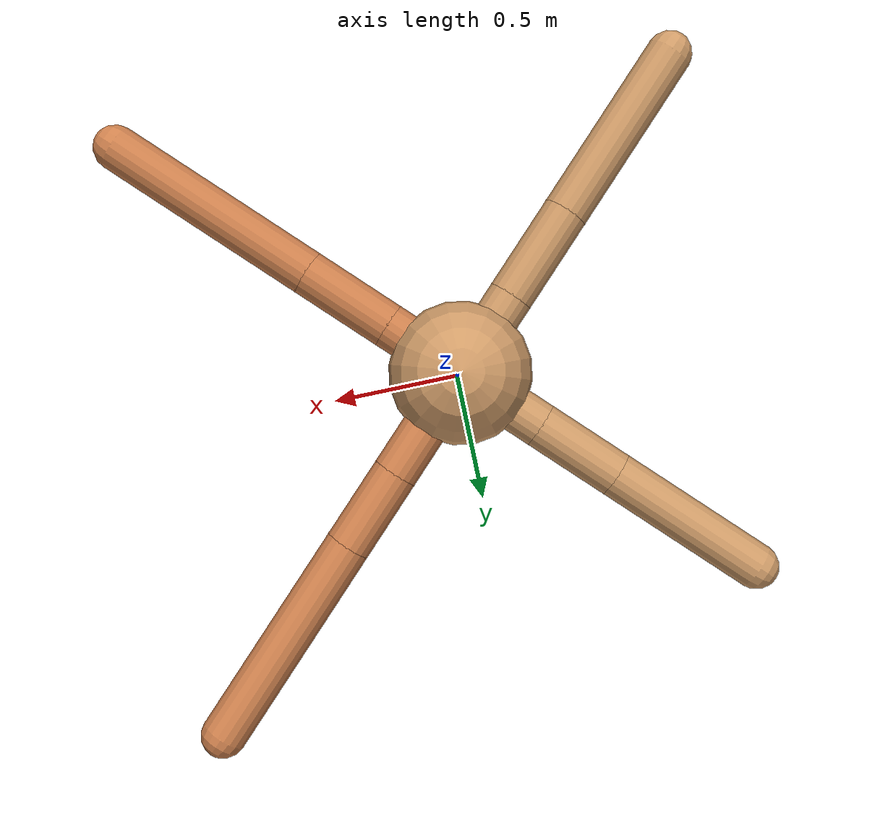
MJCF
<mujoco model="ant">
  <compiler angle="degree" coordinate="local" inertiafromgeom="true" />
  <option integrator="RK4" timestep="0.01" />
  <custom>
    <numeric data="0.0 0.0 0.55 1.0 0.0 0.0 0.0 0.0 1.0 0.0 -1.0 0.0 -1.0 0.0 1.0" name="init_qpos" />
  </custom>
  <default>
    <joint armature="1" damping="1" limited="true" />
    <geom conaffinity="0" condim="3" density="5.0" friction="1.5 0.1 0.1" margin="0.01" rgba="0.8 0.6 0.4 1" />
  </default>
  <worldbody>
    <body name="torso" pos="0 0 0.75">
      <geom name="torso_geom" pos="0 0 0" size="0.25" type="sphere" />

      <body name="front_left_leg" pos="0 0 0">
        <geom fromto="0.0 0.0 0.0 0.29155919927796087 0.29155919927796087 0.0" name="aux_1_geom" size="0.08" type="capsule" rgba=".8 .5 .3 1" />
        <body name="aux_1" pos="0.29155919927796087 0.29155919927796087 0.0">
          <joint axis="0 0 1" name="hip_1" pos="0.0 0.0 0.0" range="-40 40" type="hinge" />
          <geom fromto="0.0 0.0 0.0 0.21017169384422246 0.21017169384422246 0.0" name="left_leg_geom" size="0.08" type="capsule" rgba=".8 .5 .3 1" />
          <body pos="0.21017169384422246 0.21017169384422246 0.0" name="front_left_foot">
            <joint axis="-1 1 0" name="ankle_1" pos="0.0 0.0 0.0" range="30 100" type="hinge" />
            <geom fromto="0.0 0.0 0.0 0.552971412769957 0.552971412769957 0.0" name="left_ankle_geom" size="0.08" type="capsule" rgba=".8 .5 .3 1" />
          </body>
        </body>
      </body>
      <body name="front_right_leg" pos="0 0 0">
        <geom fromto="0.0 0.0 0.0 -0.2323798327961873 0.2323798327961873 0.0" name="aux_2_geom" size="0.08" type="capsule" />
        <body name="aux_2" pos="-0.2323798327961873 0.2323798327961873 0.0">
          <joint axis="0 0 1" name="hip_2" pos="0.0 0.0 0.0" range="-40 40" type="hinge" />
          <geom fromto="0.0 0.0 0.0 -0.21888202450996214 0.21888202450996214 0.0" name="right_leg_geom" size="0.08" type="capsule" />
          <body pos="-0.21888202450996214 0.21888202450996214 0.0" name="front_right_foot">
            <joint axis="1 1 0" name="ankle_2" pos="0.0 0.0 0.0" range="-100 -30" type="hinge" />
            <geom fromto="0.0 0.0 0.0 -0.40905234234196997 0.40905234234196997 0.0" name="right_ankle_geom" size="0.08" type="capsule" />
          </body>
        </body>
      </body>
      <body name="left_back_leg" pos="0 0 0">
        <geom fromto="0.0 0.0 0.0 -0.22337480968515774 -0.22337480968515774 0.0" name="aux_3_geom" size="0.08" type="capsule" />
        <body name="aux_3" pos="-0.22337480968515774 -0.22337480968515774 0.0">
          <joint axis="0 0 1" name="hip_3" pos="0.0 0.0 0.0" range="-40 40" type="hinge" />
          <geom fromto="0.0 0.0 0.0 -0.24410739101227794 -0.24410739101227794 0.0" name="back_leg_geom" size="0.08" type="capsule" />
          <body pos="-0.24410739101227794 -0.24410739101227794 0.0" name="left_back_foot">
            <joint axis="-1 1 0" name="ankle_3" pos="0.0 0.0 0.0" range="-100 -30" type="hinge" />
            <geom fromto="0.0 0.0 0.0 -0.46259286476420347 -0.46259286476420347 0.0" name="third_ankle_geom" size="0.08" type="capsule" />
          </body>
        </body>
      </body>
      <body name="right_back_leg" pos="0 0 0">
        <geom fromto="0.0 0.0 0.0 0.2099991840926367 -0.2099991840926367 0.0" name="aux_4_geom" size="0.08" type="capsule" rgba=".8 .5 .3 1" />
        <body name="aux_4" pos="0.2099991840926367 -0.2099991840926367 0.0">
          <joint axis="0 0 1" name="hip_4" pos="0.0 0.0 0.0" range="-40 40" type="hinge" />
          <geom fromto="0.0 0.0 0.0 0.23467760094711193 -0.23467760094711193 0.0" name="rightback_leg_geom" size="0.08" type="capsule" rgba=".8 .5 .3 1" />
          <body pos="0.23467760094711193 -0.23467760094711193 0.0" name="right_back_foot">
            <joint axis="1 1 0" name="ankle_4" pos="0.0 0.0 0.0" range="30 100" type="hinge" />
            <geom fromto="0.0 0.0 0.0 0.5587721812693682 -0.5587721812693682 0.0" name="fourth_ankle_geom" size="0.08" type="capsule" rgba=".8 .5 .3 1" />
          </body>
        </body>
      </body>
    </body>
  </worldbody>
  <actuator>
    <motor ctrllimited="true" ctrlrange="-1.0 1.0" joint="hip_4" gear="150" />
    <motor ctrllimited="true" ctrlrange="-1.0 1.0" joint="ankle_4" gear="150" />
    <motor ctrllimited="true" ctrlrange="-1.0 1.0" joint="hip_1" gear="150" />
    <motor ctrllimited="true" ctrlrange="-1.0 1.0" joint="ankle_1" gear="150" />
    <motor ctrllimited="true" ctrlrange="-1.0 1.0" joint="hip_2" gear="150" />
    <motor ctrllimited="true" ctrlrange="-1.0 1.0" joint="ankle_2" gear="150" />
    <motor ctrllimited="true" ctrlrange="-1.0 1.0" joint="hip_3" gear="150" />
    <motor ctrllimited="true" ctrlrange="-1.0 1.0" joint="ankle_3" gear="150" />
  </actuator>
</mujoco>
